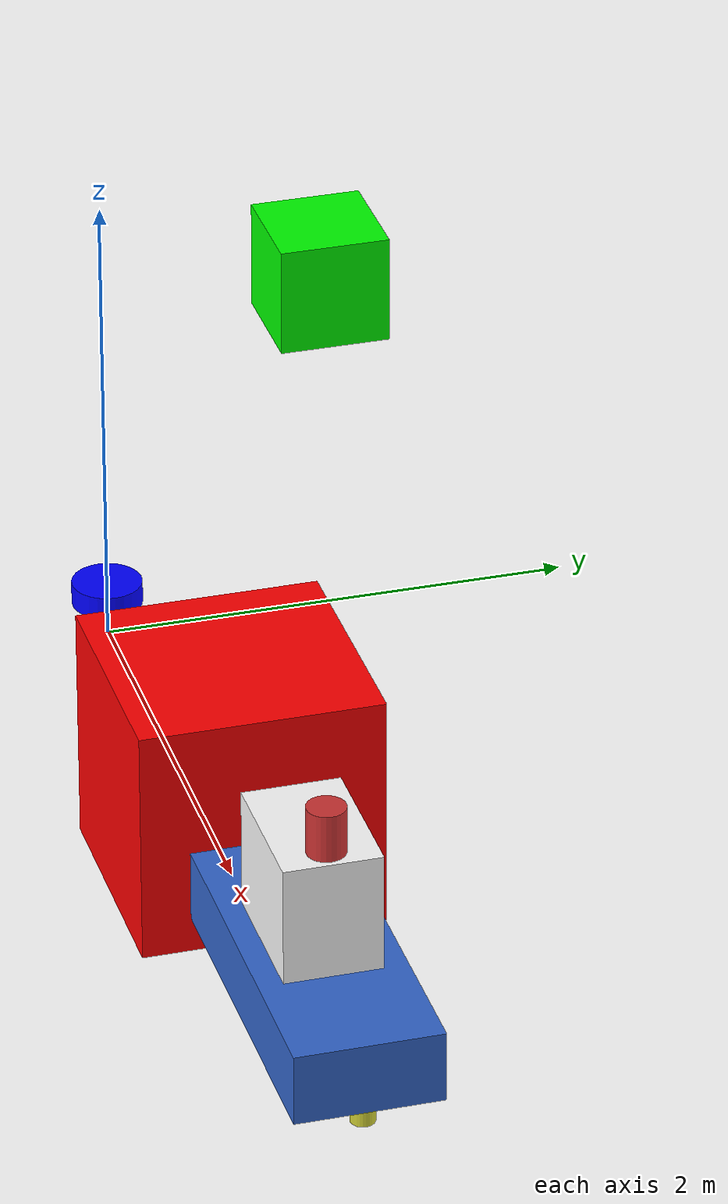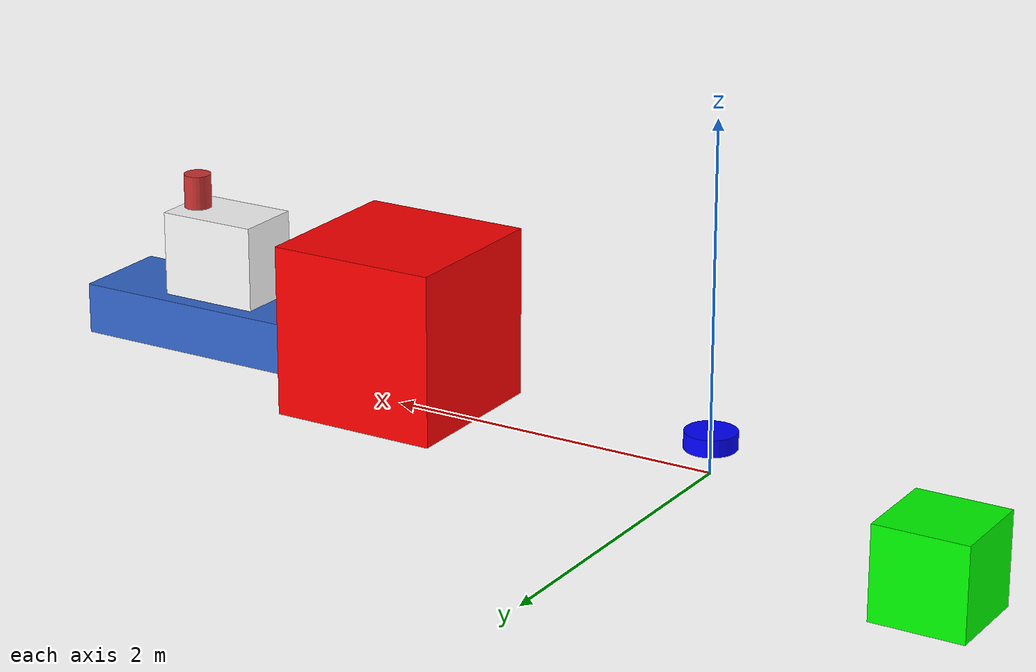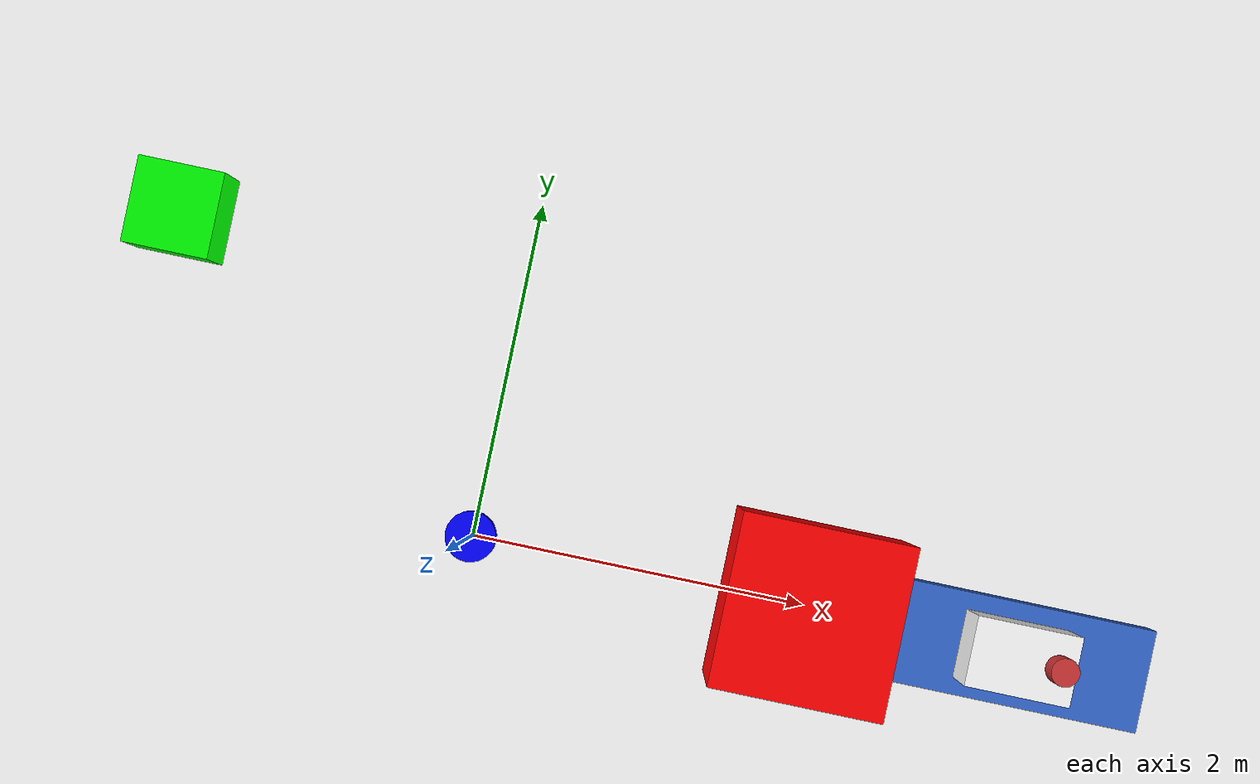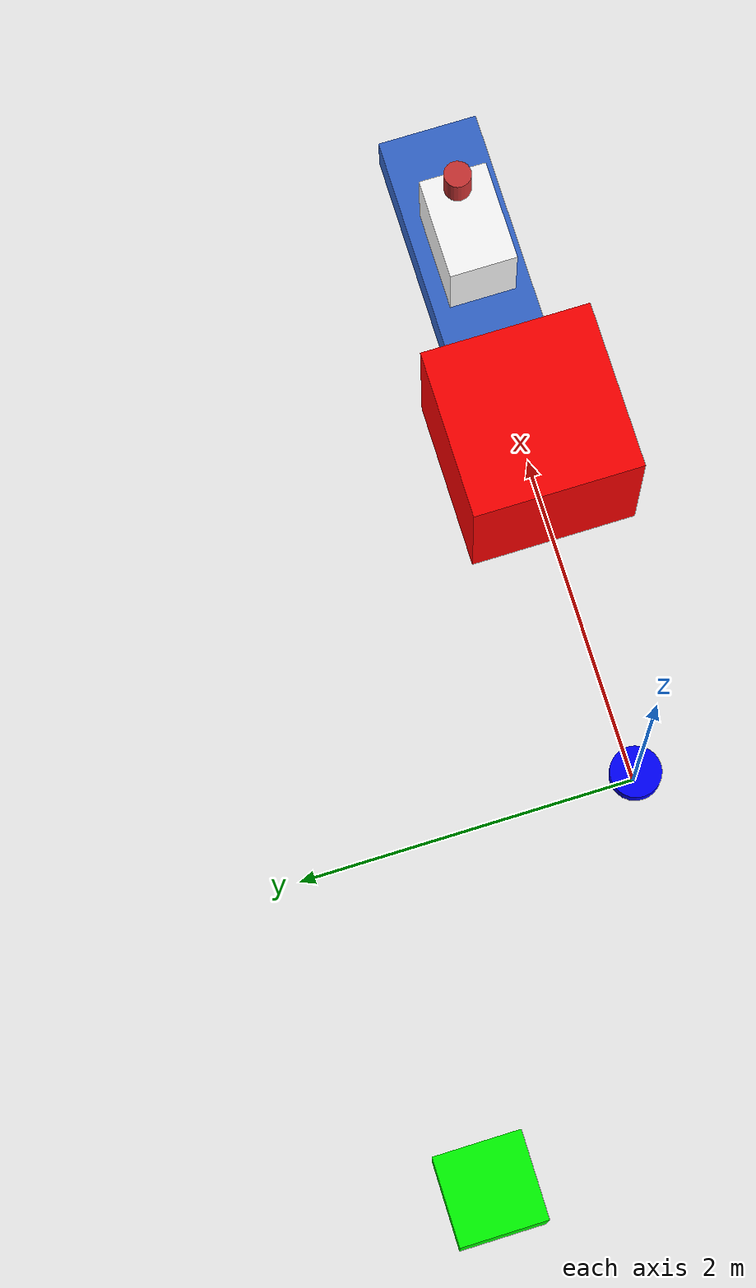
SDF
<?xml version="1.0" ?>
<sdf version="1.8">
  <world name="robot_world">
    <physics name="1ms" type="ignored">
      <max_step_size>0.001</max_step_size>
      <real_time_factor>1.0</real_time_factor>
    </physics>

    <plugin filename="gz-sim-sensors-system" name="gz::sim::systems::Sensors">
      <render_engine>ogre2</render_engine>
    </plugin>
    <plugin filename="gz-sim-scene-broadcaster-system" name="gz::sim::systems::SceneBroadcaster"></plugin>

    <light type="directional" name="sun">
      <cast_shadows>true</cast_shadows>
      <pose>0 0 10 0 0 0</pose>
      <diffuse>0.8 0.8 0.8 1</diffuse>
      <specular>0.2 0.2 0.2 1</specular>
    </light>

    <model name="ground_plane">
      <static>true</static>
      <link name="link">
        <collision name="collision">
          <geometry><plane><normal>0 0 1</normal></plane></geometry>
        </collision>
      </link>
    </model>

    <model name="box_obstacle">
      <pose>2.0 0 0.5 0 0 0</pose>
      <link name="box_link">
        <collision name="box_col">
          <geometry><box><size>1 1 1</size></box></geometry>
        </collision>
        <visual name="box_vis">
          <geometry><box><size>1 1 1</size></box></geometry>
          <material><diffuse>1 0 0 1</diffuse></material>
        </visual>
      </link>
    </model>

    <model name="robot">
      <pose>0 0 0.2 0 0 0</pose>
      <static>true</static>
      <link name="base_link">
        <inertial>
          <mass>1.0</mass>
          <inertia>
            <ixx>0.01</ixx><iyy>0.01</iyy><izz>0.01</izz>
          </inertia>
        </inertial>
        <visual name="base_vis">
          <geometry><cylinder><radius>0.15</radius><length>0.1</length></cylinder></geometry>
          <material><diffuse>0 0 1 1</diffuse></material>
        </visual>

        <sensor name="gpu_lidar" type="gpu_lidar">
          <pose>0 0 0.05 0 0 0</pose>
          <topic>/scan</topic>
          <update_rate>5</update_rate>
          <ray>
            <scan>
              <horizontal>
                <samples>360</samples>
                <resolution>1</resolution>
                <min_angle>-3.14159</min_angle>
                <max_angle>3.14159</max_angle>
              </horizontal>
            </scan>
            <range>
              <min>0.15</min>
              <max>12.0</max>
            </range>
          </ray>
          <always_on>1</always_on>
          <visualize>true</visualize>
        </sensor>

        <sensor name="camera" type="camera">
          <pose>0 0 0.15 0 0 0</pose>
          <topic>/camera/image_raw</topic>
          <update_rate>5</update_rate>
          <camera>
            <horizontal_fov>1.047</horizontal_fov>
            <image>
              <width>320</width>
              <height>240</height>
              <format>R8G8B8</format>
            </image>
            <clip>
              <near>0.1</near>
              <far>20</far>
            </clip>
          </camera>
          <always_on>1</always_on>
          <visualize>true</visualize>
        </sensor>
      </link>
    </model>

    <model name="box_obstacle2">
      <pose>-2.0 1.5 0.5 0 0 0</pose>
      <link name="box_link">
        <collision name="box_col">
          <geometry><box><size>0.5 0.5 0.5</size></box></geometry>
        </collision>
        <visual name="box_vis">
          <geometry><box><size>0.5 0.5 0.5</size></box></geometry>
          <material><diffuse>0 1 0 1</diffuse></material>
        </visual>
      </link>
    </model>

    <model name="kapal">
      <pose>3.0 0 0 0 0 0</pose>
      <static>true</static>
      <link name="body">
        <inertial>
          <mass>100.0</mass>
          <inertia>
            <ixx>10.0</ixx><iyy>20.0</iyy><izz>15.0</izz>
            <ixy>0.0</ixy><ixz>0.0</ixz><iyz>0.0</iyz>
          </inertia>
        </inertial>
        <collision name="hull">
          <pose>0 0 0.3 0 0 0</pose>
          <geometry><box><size>2.0 0.6 0.3</size></box></geometry>
        </collision>
        <collision name="cabin">
          <pose>0.2 0 0.7 0 0 0</pose>
          <geometry><box><size>0.6 0.4 0.5</size></box></geometry>
        </collision>
        <visual name="hull_visual">
          <pose>0 0 0.3 0 0 0</pose>
          <geometry><box><size>2.0 0.6 0.3</size></box></geometry>
          <material>
            <ambient>0.2 0.4 0.8 1.0</ambient>
            <diffuse>0.2 0.4 0.8 1.0</diffuse>
            <specular>0.1 0.1 0.1 1.0</specular>
          </material>
        </visual>
        <visual name="cabin_visual">
          <pose>0.2 0 0.7 0 0 0</pose>
          <geometry><box><size>0.6 0.4 0.5</size></box></geometry>
          <material>
            <ambient>1.0 1.0 1.0 1.0</ambient>
            <diffuse>1.0 1.0 1.0 1.0</diffuse>
            <specular>0.1 0.1 0.1 1.0</specular>
          </material>
        </visual>
        <visual name="funnel_visual">
          <pose>0.4 0 1.0 0 0 0</pose>
          <geometry><cylinder><radius>0.08</radius><length>0.3</length></cylinder></geometry>
          <material>
            <ambient>0.8 0.2 0.2 1.0</ambient>
            <diffuse>0.8 0.2 0.2 1.0</diffuse>
          </material>
        </visual>
        <visual name="bow_visual">
          <pose>0.9 0 0.15 0 0 0</pose>
          <geometry><cylinder><radius>0.05</radius><length>0.2</length></cylinder></geometry>
          <material>
            <ambient>0.8 0.8 0.2 1.0</ambient>
            <diffuse>0.8 0.8 0.2 1.0</diffuse>
          </material>
        </visual>
      </link>
    </model>
  </world>
</sdf>
